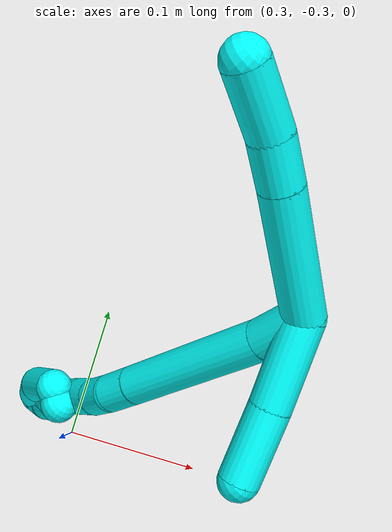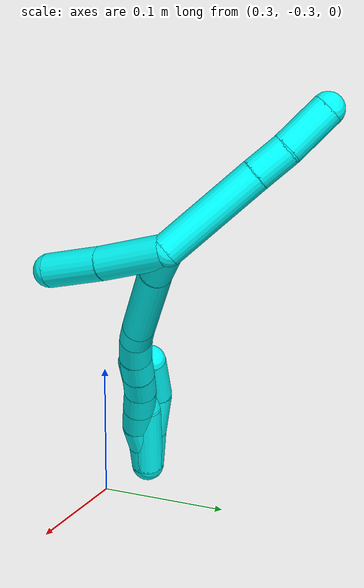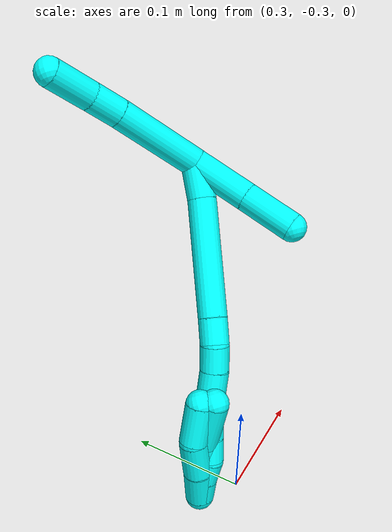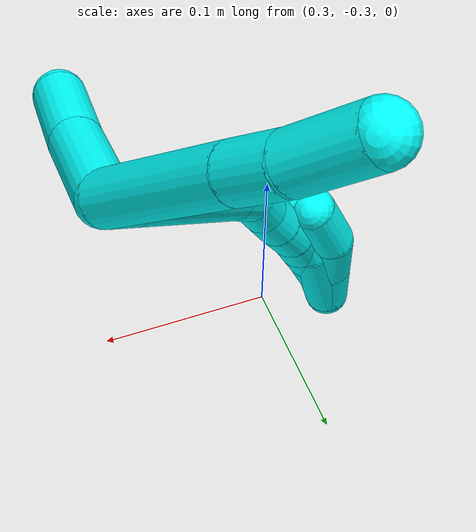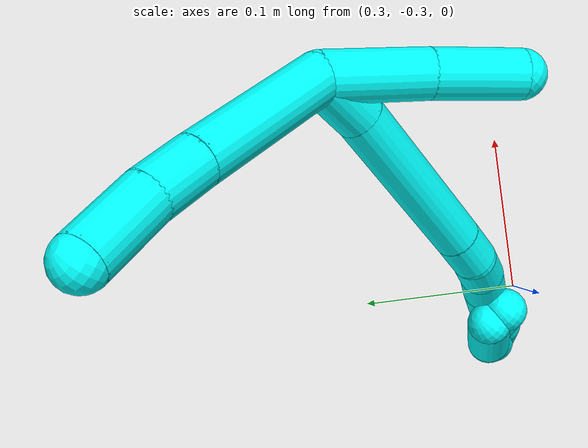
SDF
<sdf version="1.7">
 <world name="default">
  <model name="3">
   <static>0</static>
   <link name="3">
    <collision name="collision-cylinder-e_1_2_8">
     <pose>-0.028236 0.018258 -0.023532 -2.48173 -0.758704 1.72221</pose>
     <geometry><cylinder><radius>0.0125</radius><length>0.082083</length></cylinder></geometry>
     <surface>
      <friction><ode><mu>1.16</mu><mu2>1.16</mu2><slip1>0</slip1><slip2>0</slip2></ode></friction>
      <contact><ode><kp>1e+06</kp><kd>1</kd><max_vel>0</max_vel><min_depth>0.001</min_depth></ode></contact>
     </surface>
    </collision>
    <visual name="visual-cylinder-e_1_2_8">
     <pose>-0.028236 0.018258 -0.023532 -2.48173 -0.758704 1.72221</pose>
     <geometry><cylinder><radius>0.0125</radius><length>0.082083</length></cylinder></geometry>
     <material><ambient>0.003922 1 0.996078 1</ambient></material>
    </visual>
    <collision name="collision-cylinder-e_2_8_9">
     <pose>-0.06642 0.042738 -0.054688 -2.45709 -0.79095 1.72865</pose>
     <geometry><cylinder><radius>0.0125</radius><length>0.027986</length></cylinder></geometry>
     <surface>
      <friction><ode><mu>1.16</mu><mu2>1.16</mu2><slip1>0</slip1><slip2>0</slip2></ode></friction>
      <contact><ode><kp>1e+06</kp><kd>1</kd><max_vel>0</max_vel><min_depth>0.001</min_depth></ode></contact>
     </surface>
    </collision>
    <visual name="visual-cylinder-e_2_8_9">
     <pose>-0.06642 0.042738 -0.054688 -2.45709 -0.79095 1.72865</pose>
     <geometry><cylinder><radius>0.0125</radius><length>0.027986</length></cylinder></geometry>
     <material><ambient>0.003922 1 0.996078 1</ambient></material>
    </visual>
    <collision name="collision-cylinder-e_3_9_6">
     <pose>-0.090193 0.059903 -0.07168 -2.27885 -0.764727 1.4362</pose>
     <geometry><cylinder><radius>0.0125</radius><length>0.039932</length></cylinder></geometry>
     <surface>
      <friction><ode><mu>1.16</mu><mu2>1.16</mu2><slip1>0</slip1><slip2>0</slip2></ode></friction>
      <contact><ode><kp>1e+06</kp><kd>1</kd><max_vel>0</max_vel><min_depth>0.001</min_depth></ode></contact>
     </surface>
    </collision>
    <visual name="visual-cylinder-e_3_9_6">
     <pose>-0.090193 0.059903 -0.07168 -2.27885 -0.764727 1.4362</pose>
     <geometry><cylinder><radius>0.0125</radius><length>0.039932</length></cylinder></geometry>
     <material><ambient>0.003922 1 0.996078 1</ambient></material>
    </visual>
    <collision name="collision-cylinder-e_1_2_10">
     <pose>0.016113 0.004681 0.020933 -0.220008 0.644282 -0.073696</pose>
     <geometry><cylinder><radius>0.0125</radius><length>0.053656</length></cylinder></geometry>
     <surface>
      <friction><ode><mu>1.16</mu><mu2>1.16</mu2><slip1>0</slip1><slip2>0</slip2></ode></friction>
      <contact><ode><kp>1e+06</kp><kd>1</kd><max_vel>0</max_vel><min_depth>0.001</min_depth></ode></contact>
     </surface>
    </collision>
    <visual name="visual-cylinder-e_1_2_10">
     <pose>0.016113 0.004681 0.020933 -0.220008 0.644282 -0.073696</pose>
     <geometry><cylinder><radius>0.0125</radius><length>0.053656</length></cylinder></geometry>
     <material><ambient>0.003922 1 0.996078 1</ambient></material>
    </visual>
    <collision name="collision-cylinder-e_2_10_5">
     <pose>0.04564 0.014624 0.060013 -0.282213 0.617318 -0.090524</pose>
     <geometry><cylinder><radius>0.0125</radius><length>0.046344</length></cylinder></geometry>
     <surface>
      <friction><ode><mu>1.16</mu><mu2>1.16</mu2><slip1>0</slip1><slip2>0</slip2></ode></friction>
      <contact><ode><kp>1e+06</kp><kd>1</kd><max_vel>0</max_vel><min_depth>0.001</min_depth></ode></contact>
     </surface>
    </collision>
    <visual name="visual-cylinder-e_2_10_5">
     <pose>0.04564 0.014624 0.060013 -0.282213 0.617318 -0.090524</pose>
     <geometry><cylinder><radius>0.0125</radius><length>0.046344</length></cylinder></geometry>
     <material><ambient>0.003922 1 0.996078 1</ambient></material>
    </visual>
    <collision name="collision-cylinder-e_1_2_11">
     <pose>-0.001507 -0.001035 0.016079 0.064309 -0.093279 -0.003003</pose>
     <geometry><cylinder><radius>0.0125</radius><length>0.032365</length></cylinder></geometry>
     <surface>
      <friction><ode><mu>1.16</mu><mu2>1.16</mu2><slip1>0</slip1><slip2>0</slip2></ode></friction>
      <contact><ode><kp>1e+06</kp><kd>1</kd><max_vel>0</max_vel><min_depth>0.001</min_depth></ode></contact>
     </surface>
    </collision>
    <visual name="visual-cylinder-e_1_2_11">
     <pose>-0.001507 -0.001035 0.016079 0.064309 -0.093279 -0.003003</pose>
     <geometry><cylinder><radius>0.0125</radius><length>0.032365</length></cylinder></geometry>
     <material><ambient>0.003922 1 0.996078 1</ambient></material>
    </visual>
    <collision name="collision-cylinder-e_2_11_12">
     <pose>-0.013027 -0.002832 0.081973 0.015274 -0.198324 -0.00152</pose>
     <geometry><cylinder><radius>0.0125</radius><length>0.101636</length></cylinder></geometry>
     <surface>
      <friction><ode><mu>1.16</mu><mu2>1.16</mu2><slip1>0</slip1><slip2>0</slip2></ode></friction>
      <contact><ode><kp>1e+06</kp><kd>1</kd><max_vel>0</max_vel><min_depth>0.001</min_depth></ode></contact>
     </surface>
    </collision>
    <visual name="visual-cylinder-e_2_11_12">
     <pose>-0.013027 -0.002832 0.081973 0.015274 -0.198324 -0.00152</pose>
     <geometry><cylinder><radius>0.0125</radius><length>0.101636</length></cylinder></geometry>
     <material><ambient>0.003922 1 0.996078 1</ambient></material>
    </visual>
    <collision name="collision-cylinder-e_3_12_13">
     <pose>-0.025359 -0.004298 0.142858 0.063608 -0.206125 -0.006581</pose>
     <geometry><cylinder><radius>0.0125</radius><length>0.022662</length></cylinder></geometry>
     <surface>
      <friction><ode><mu>1.16</mu><mu2>1.16</mu2><slip1>0</slip1><slip2>0</slip2></ode></friction>
      <contact><ode><kp>1e+06</kp><kd>1</kd><max_vel>0</max_vel><min_depth>0.001</min_depth></ode></contact>
     </surface>
    </collision>
    <visual name="visual-cylinder-e_3_12_13">
     <pose>-0.025359 -0.004298 0.142858 0.063608 -0.206125 -0.006581</pose>
     <geometry><cylinder><radius>0.0125</radius><length>0.022662</length></cylinder></geometry>
     <material><ambient>0.003922 1 0.996078 1</ambient></material>
    </visual>
    <collision name="collision-cylinder-e_4_13_14">
     <pose>-0.030198 -0.008802 0.164017 0.360077 -0.229607 -0.041969</pose>
     <geometry><cylinder><radius>0.0125</radius><length>0.022144</length></cylinder></geometry>
     <surface>
      <friction><ode><mu>1.16</mu><mu2>1.16</mu2><slip1>0</slip1><slip2>0</slip2></ode></friction>
      <contact><ode><kp>1e+06</kp><kd>1</kd><max_vel>0</max_vel><min_depth>0.001</min_depth></ode></contact>
     </surface>
    </collision>
    <visual name="visual-cylinder-e_4_13_14">
     <pose>-0.030198 -0.008802 0.164017 0.360077 -0.229607 -0.041969</pose>
     <geometry><cylinder><radius>0.0125</radius><length>0.022144</length></cylinder></geometry>
     <material><ambient>0.003922 1 0.996078 1</ambient></material>
    </visual>
    <collision name="collision-cylinder-e_5_14_15">
     <pose>-0.036236 -0.016234 0.182922 0.390937 -0.353519 -0.070704</pose>
     <geometry><cylinder><radius>0.0125</radius><length>0.020326</length></cylinder></geometry>
     <surface>
      <friction><ode><mu>1.16</mu><mu2>1.16</mu2><slip1>0</slip1><slip2>0</slip2></ode></friction>
      <contact><ode><kp>1e+06</kp><kd>1</kd><max_vel>0</max_vel><min_depth>0.001</min_depth></ode></contact>
     </surface>
    </collision>
    <visual name="visual-cylinder-e_5_14_15">
     <pose>-0.036236 -0.016234 0.182922 0.390937 -0.353519 -0.070704</pose>
     <geometry><cylinder><radius>0.0125</radius><length>0.020326</length></cylinder></geometry>
     <material><ambient>0.003922 1 0.996078 1</ambient></material>
    </visual>
    <collision name="collision-cylinder-e_6_15_16">
     <pose>-0.04311 -0.023158 0.200924 0.34407 -0.331226 -0.058067</pose>
     <geometry><cylinder><radius>0.0125</radius><length>0.020638</length></cylinder></geometry>
     <surface>
      <friction><ode><mu>1.16</mu><mu2>1.16</mu2><slip1>0</slip1><slip2>0</slip2></ode></friction>
      <contact><ode><kp>1e+06</kp><kd>1</kd><max_vel>0</max_vel><min_depth>0.001</min_depth></ode></contact>
     </surface>
    </collision>
    <visual name="visual-cylinder-e_6_15_16">
     <pose>-0.04311 -0.023158 0.200924 0.34407 -0.331226 -0.058067</pose>
     <geometry><cylinder><radius>0.0125</radius><length>0.020638</length></cylinder></geometry>
     <material><ambient>0.003922 1 0.996078 1</ambient></material>
    </visual>
    <collision name="collision-cylinder-e_7_16_17">
     <pose>-0.048394 -0.030271 0.21926 0.395553 -0.192025 -0.038595</pose>
     <geometry><cylinder><radius>0.0125</radius><length>0.020203</length></cylinder></geometry>
     <surface>
      <friction><ode><mu>1.16</mu><mu2>1.16</mu2><slip1>0</slip1><slip2>0</slip2></ode></friction>
      <contact><ode><kp>1e+06</kp><kd>1</kd><max_vel>0</max_vel><min_depth>0.001</min_depth></ode></contact>
     </surface>
    </collision>
    <visual name="visual-cylinder-e_7_16_17">
     <pose>-0.048394 -0.030271 0.21926 0.395553 -0.192025 -0.038595</pose>
     <geometry><cylinder><radius>0.0125</radius><length>0.020203</length></cylinder></geometry>
     <material><ambient>0.003922 1 0.996078 1</ambient></material>
    </visual>
    <collision name="collision-cylinder-e_8_17_18">
     <pose>-0.052375 -0.0379 0.237435 0.399378 -0.206586 -0.041953</pose>
     <geometry><cylinder><radius>0.0125</radius><length>0.020017</length></cylinder></geometry>
     <surface>
      <friction><ode><mu>1.16</mu><mu2>1.16</mu2><slip1>0</slip1><slip2>0</slip2></ode></friction>
      <contact><ode><kp>1e+06</kp><kd>1</kd><max_vel>0</max_vel><min_depth>0.001</min_depth></ode></contact>
     </surface>
    </collision>
    <visual name="visual-cylinder-e_8_17_18">
     <pose>-0.052375 -0.0379 0.237435 0.399378 -0.206586 -0.041953</pose>
     <geometry><cylinder><radius>0.0125</radius><length>0.020017</length></cylinder></geometry>
     <material><ambient>0.003922 1 0.996078 1</ambient></material>
    </visual>
    <collision name="collision-cylinder-e_9_18_19">
     <pose>-0.058751 -0.046934 0.253814 0.617631 -0.446893 -0.144737</pose>
     <geometry><cylinder><radius>0.0125</radius><length>0.020007</length></cylinder></geometry>
     <surface>
      <friction><ode><mu>1.16</mu><mu2>1.16</mu2><slip1>0</slip1><slip2>0</slip2></ode></friction>
      <contact><ode><kp>1e+06</kp><kd>1</kd><max_vel>0</max_vel><min_depth>0.001</min_depth></ode></contact>
     </surface>
    </collision>
    <visual name="visual-cylinder-e_9_18_19">
     <pose>-0.058751 -0.046934 0.253814 0.617631 -0.446893 -0.144737</pose>
     <geometry><cylinder><radius>0.0125</radius><length>0.020007</length></cylinder></geometry>
     <material><ambient>0.003922 1 0.996078 1</ambient></material>
    </visual>
    <collision name="collision-cylinder-e_10_19_1">
     <pose>-0.06586 -0.058298 0.268555 0.693515 -0.282284 -0.102598</pose>
     <geometry><cylinder><radius>0.0125</radius><length>0.020002</length></cylinder></geometry>
     <surface>
      <friction><ode><mu>1.16</mu><mu2>1.16</mu2><slip1>0</slip1><slip2>0</slip2></ode></friction>
      <contact><ode><kp>1e+06</kp><kd>1</kd><max_vel>0</max_vel><min_depth>0.001</min_depth></ode></contact>
     </surface>
    </collision>
    <visual name="visual-cylinder-e_10_19_1">
     <pose>-0.06586 -0.058298 0.268555 0.693515 -0.282284 -0.102598</pose>
     <geometry><cylinder><radius>0.0125</radius><length>0.020002</length></cylinder></geometry>
     <material><ambient>0.003922 1 0.996078 1</ambient></material>
    </visual>
    <collision name="collision-cylinder-e_1_1_20">
     <pose>-0.062699 -0.048703 0.253508 -2.52993 0.213696 -0.654943</pose>
     <geometry><cylinder><radius>0.0125</radius><length>0.056079</length></cylinder></geometry>
     <surface>
      <friction><ode><mu>1.16</mu><mu2>1.16</mu2><slip1>0</slip1><slip2>0</slip2></ode></friction>
      <contact><ode><kp>1e+06</kp><kd>1</kd><max_vel>0</max_vel><min_depth>0.001</min_depth></ode></contact>
     </surface>
    </collision>
    <visual name="visual-cylinder-e_1_1_20">
     <pose>-0.062699 -0.048703 0.253508 -2.52993 0.213696 -0.654943</pose>
     <geometry><cylinder><radius>0.0125</radius><length>0.056079</length></cylinder></geometry>
     <material><ambient>0.003922 1 0.996078 1</ambient></material>
    </visual>
    <collision name="collision-cylinder-e_2_20_4">
     <pose>-0.049182 -0.019169 0.215761 -2.40815 0.351983 -0.867208</pose>
     <geometry><cylinder><radius>0.0125</radius><length>0.043921</length></cylinder></geometry>
     <surface>
      <friction><ode><mu>1.16</mu><mu2>1.16</mu2><slip1>0</slip1><slip2>0</slip2></ode></friction>
      <contact><ode><kp>1e+06</kp><kd>1</kd><max_vel>0</max_vel><min_depth>0.001</min_depth></ode></contact>
     </surface>
    </collision>
    <visual name="visual-cylinder-e_2_20_4">
     <pose>-0.049182 -0.019169 0.215761 -2.40815 0.351983 -0.867208</pose>
     <geometry><cylinder><radius>0.0125</radius><length>0.043921</length></cylinder></geometry>
     <material><ambient>0.003922 1 0.996078 1</ambient></material>
    </visual>
    <collision name="collision-cylinder-e_1_1_21">
     <pose>-0.067676 -0.054118 0.264819 -2.39362 0.063821 -0.162318</pose>
     <geometry><cylinder><radius>0.0125</radius><length>0.030408</length></cylinder></geometry>
     <surface>
      <friction><ode><mu>1.16</mu><mu2>1.16</mu2><slip1>0</slip1><slip2>0</slip2></ode></friction>
      <contact><ode><kp>1e+06</kp><kd>1</kd><max_vel>0</max_vel><min_depth>0.001</min_depth></ode></contact>
     </surface>
    </collision>
    <visual name="visual-cylinder-e_1_1_21">
     <pose>-0.067676 -0.054118 0.264819 -2.39362 0.063821 -0.162318</pose>
     <geometry><cylinder><radius>0.0125</radius><length>0.030408</length></cylinder></geometry>
     <material><ambient>0.003922 1 0.996078 1</ambient></material>
    </visual>
    <collision name="collision-cylinder-e_2_21_22">
     <pose>-0.066114 -0.033616 0.240318 -2.49104 0.035192 -0.104263</pose>
     <geometry><cylinder><radius>0.0125</radius><length>0.033644</length></cylinder></geometry>
     <surface>
      <friction><ode><mu>1.16</mu><mu2>1.16</mu2><slip1>0</slip1><slip2>0</slip2></ode></friction>
      <contact><ode><kp>1e+06</kp><kd>1</kd><max_vel>0</max_vel><min_depth>0.001</min_depth></ode></contact>
     </surface>
    </collision>
    <visual name="visual-cylinder-e_2_21_22">
     <pose>-0.066114 -0.033616 0.240318 -2.49104 0.035192 -0.104263</pose>
     <geometry><cylinder><radius>0.0125</radius><length>0.033644</length></cylinder></geometry>
     <material><ambient>0.003922 1 0.996078 1</ambient></material>
    </visual>
    <collision name="collision-cylinder-e_3_22_3">
     <pose>-0.059451 -0.014901 0.212333 -2.61285 0.344593 -1.14265</pose>
     <geometry><cylinder><radius>0.0125</radius><length>0.035948</length></cylinder></geometry>
     <surface>
      <friction><ode><mu>1.16</mu><mu2>1.16</mu2><slip1>0</slip1><slip2>0</slip2></ode></friction>
      <contact><ode><kp>1e+06</kp><kd>1</kd><max_vel>0</max_vel><min_depth>0.001</min_depth></ode></contact>
     </surface>
    </collision>
    <visual name="visual-cylinder-e_3_22_3">
     <pose>-0.059451 -0.014901 0.212333 -2.61285 0.344593 -1.14265</pose>
     <geometry><cylinder><radius>0.0125</radius><length>0.035948</length></cylinder></geometry>
     <material><ambient>0.003922 1 0.996078 1</ambient></material>
    </visual>
    <collision name="collision-sphere-3">
     <pose>-0.053379 -0.006367 0.197726 0 -0 0</pose>
     <geometry><sphere><radius>0.0125</radius></sphere></geometry>
     <surface>
      <friction><ode><mu>1.16</mu><mu2>1.16</mu2><slip1>0</slip1><slip2>0</slip2></ode></friction>
      <contact><ode><kp>1e+06</kp><kd>1</kd><max_vel>0</max_vel><min_depth>0.001</min_depth></ode></contact>
     </surface>
    </collision>
    <visual name="visual-sphere-3">
     <pose>-0.053379 -0.006367 0.197726 0 -0 0</pose>
     <geometry><sphere><radius>0.0125</radius></sphere></geometry>
     <material><ambient>0.003922 1 0.996078 1</ambient></material>
    </visual>
    <collision name="collision-sphere-22">
     <pose>-0.065522 -0.023435 0.226941 0 -0 0</pose>
     <geometry><sphere><radius>0.0125</radius></sphere></geometry>
     <surface>
      <friction><ode><mu>1.16</mu><mu2>1.16</mu2><slip1>0</slip1><slip2>0</slip2></ode></friction>
      <contact><ode><kp>1e+06</kp><kd>1</kd><max_vel>0</max_vel><min_depth>0.001</min_depth></ode></contact>
     </surface>
    </collision>
    <visual name="visual-sphere-22">
     <pose>-0.065522 -0.023435 0.226941 0 -0 0</pose>
     <geometry><sphere><radius>0.0125</radius></sphere></geometry>
     <material><ambient>0.003922 1 0.996078 1</ambient></material>
    </visual>
    <collision name="collision-sphere-21">
     <pose>-0.066706 -0.043798 0.253696 0 -0 0</pose>
     <geometry><sphere><radius>0.0125</radius></sphere></geometry>
     <surface>
      <friction><ode><mu>1.16</mu><mu2>1.16</mu2><slip1>0</slip1><slip2>0</slip2></ode></friction>
      <contact><ode><kp>1e+06</kp><kd>1</kd><max_vel>0</max_vel><min_depth>0.001</min_depth></ode></contact>
     </surface>
    </collision>
    <visual name="visual-sphere-21">
     <pose>-0.066706 -0.043798 0.253696 0 -0 0</pose>
     <geometry><sphere><radius>0.0125</radius></sphere></geometry>
     <material><ambient>0.003922 1 0.996078 1</ambient></material>
    </visual>
    <collision name="collision-sphere-4">
     <pose>-0.04161 -0.005369 0.200447 0 -0 0</pose>
     <geometry><sphere><radius>0.0125</radius></sphere></geometry>
     <surface>
      <friction><ode><mu>1.16</mu><mu2>1.16</mu2><slip1>0</slip1><slip2>0</slip2></ode></friction>
      <contact><ode><kp>1e+06</kp><kd>1</kd><max_vel>0</max_vel><min_depth>0.001</min_depth></ode></contact>
     </surface>
    </collision>
    <visual name="visual-sphere-4">
     <pose>-0.04161 -0.005369 0.200447 0 -0 0</pose>
     <geometry><sphere><radius>0.0125</radius></sphere></geometry>
     <material><ambient>0.003922 1 0.996078 1</ambient></material>
    </visual>
    <collision name="collision-sphere-20">
     <pose>-0.056753 -0.032969 0.231075 0 -0 0</pose>
     <geometry><sphere><radius>0.0125</radius></sphere></geometry>
     <surface>
      <friction><ode><mu>1.16</mu><mu2>1.16</mu2><slip1>0</slip1><slip2>0</slip2></ode></friction>
      <contact><ode><kp>1e+06</kp><kd>1</kd><max_vel>0</max_vel><min_depth>0.001</min_depth></ode></contact>
     </surface>
    </collision>
    <visual name="visual-sphere-20">
     <pose>-0.056753 -0.032969 0.231075 0 -0 0</pose>
     <geometry><sphere><radius>0.0125</radius></sphere></geometry>
     <material><ambient>0.003922 1 0.996078 1</ambient></material>
    </visual>
    <collision name="collision-sphere-5">
     <pose>0.059053 0.019886 0.078161 0 -0 0</pose>
     <geometry><sphere><radius>0.0125</radius></sphere></geometry>
     <surface>
      <friction><ode><mu>1.16</mu><mu2>1.16</mu2><slip1>0</slip1><slip2>0</slip2></ode></friction>
      <contact><ode><kp>1e+06</kp><kd>1</kd><max_vel>0</max_vel><min_depth>0.001</min_depth></ode></contact>
     </surface>
    </collision>
    <visual name="visual-sphere-5">
     <pose>0.059053 0.019886 0.078161 0 -0 0</pose>
     <geometry><sphere><radius>0.0125</radius></sphere></geometry>
     <material><ambient>0.003922 1 0.996078 1</ambient></material>
    </visual>
    <collision name="collision-sphere-10">
     <pose>0.032227 0.009362 0.041865 0 -0 0</pose>
     <geometry><sphere><radius>0.0125</radius></sphere></geometry>
     <surface>
      <friction><ode><mu>1.16</mu><mu2>1.16</mu2><slip1>0</slip1><slip2>0</slip2></ode></friction>
      <contact><ode><kp>1e+06</kp><kd>1</kd><max_vel>0</max_vel><min_depth>0.001</min_depth></ode></contact>
     </surface>
    </collision>
    <visual name="visual-sphere-10">
     <pose>0.032227 0.009362 0.041865 0 -0 0</pose>
     <geometry><sphere><radius>0.0125</radius></sphere></geometry>
     <material><ambient>0.003922 1 0.996078 1</ambient></material>
    </visual>
    <collision name="collision-sphere-6">
     <pose>-0.104016 0.070847 -0.081049 0 -0 0</pose>
     <geometry><sphere><radius>0.0125</radius></sphere></geometry>
     <surface>
      <friction><ode><mu>1.16</mu><mu2>1.16</mu2><slip1>0</slip1><slip2>0</slip2></ode></friction>
      <contact><ode><kp>1e+06</kp><kd>1</kd><max_vel>0</max_vel><min_depth>0.001</min_depth></ode></contact>
     </surface>
    </collision>
    <visual name="visual-sphere-6">
     <pose>-0.104016 0.070847 -0.081049 0 -0 0</pose>
     <geometry><sphere><radius>0.0125</radius></sphere></geometry>
     <material><ambient>0.003922 1 0.996078 1</ambient></material>
    </visual>
    <collision name="collision-sphere-9">
     <pose>-0.07637 0.048959 -0.06231 0 -0 0</pose>
     <geometry><sphere><radius>0.0125</radius></sphere></geometry>
     <surface>
      <friction><ode><mu>1.16</mu><mu2>1.16</mu2><slip1>0</slip1><slip2>0</slip2></ode></friction>
      <contact><ode><kp>1e+06</kp><kd>1</kd><max_vel>0</max_vel><min_depth>0.001</min_depth></ode></contact>
     </surface>
    </collision>
    <visual name="visual-sphere-9">
     <pose>-0.07637 0.048959 -0.06231 0 -0 0</pose>
     <geometry><sphere><radius>0.0125</radius></sphere></geometry>
     <material><ambient>0.003922 1 0.996078 1</ambient></material>
    </visual>
    <collision name="collision-sphere-2">
     <geometry><sphere><radius>0.0125</radius></sphere></geometry>
     <surface>
      <friction><ode><mu>1.16</mu><mu2>1.16</mu2><slip1>0</slip1><slip2>0</slip2></ode></friction>
      <contact><ode><kp>1e+06</kp><kd>1</kd><max_vel>0</max_vel><min_depth>0.001</min_depth></ode></contact>
     </surface>
    </collision>
    <visual name="visual-sphere-2">
     <geometry><sphere><radius>0.0125</radius></sphere></geometry>
     <material><ambient>0.003922 1 0.996078 1</ambient></material>
    </visual>
    <collision name="collision-sphere-19">
     <pose>-0.063074 -0.052158 0.261169 0 -0 0</pose>
     <geometry><sphere><radius>0.0125</radius></sphere></geometry>
     <surface>
      <friction><ode><mu>1.16</mu><mu2>1.16</mu2><slip1>0</slip1><slip2>0</slip2></ode></friction>
      <contact><ode><kp>1e+06</kp><kd>1</kd><max_vel>0</max_vel><min_depth>0.001</min_depth></ode></contact>
     </surface>
    </collision>
    <visual name="visual-sphere-19">
     <pose>-0.063074 -0.052158 0.261169 0 -0 0</pose>
     <geometry><sphere><radius>0.0125</radius></sphere></geometry>
     <material><ambient>0.003922 1 0.996078 1</ambient></material>
    </visual>
    <collision name="collision-sphere-8">
     <pose>-0.056471 0.036517 -0.047065 0 -0 0</pose>
     <geometry><sphere><radius>0.0125</radius></sphere></geometry>
     <surface>
      <friction><ode><mu>1.16</mu><mu2>1.16</mu2><slip1>0</slip1><slip2>0</slip2></ode></friction>
      <contact><ode><kp>1e+06</kp><kd>1</kd><max_vel>0</max_vel><min_depth>0.001</min_depth></ode></contact>
     </surface>
    </collision>
    <visual name="visual-sphere-8">
     <pose>-0.056471 0.036517 -0.047065 0 -0 0</pose>
     <geometry><sphere><radius>0.0125</radius></sphere></geometry>
     <material><ambient>0.003922 1 0.996078 1</ambient></material>
    </visual>
    <collision name="collision-sphere-11">
     <pose>-0.003015 -0.002071 0.032157 0 -0 0</pose>
     <geometry><sphere><radius>0.0125</radius></sphere></geometry>
     <surface>
      <friction><ode><mu>1.16</mu><mu2>1.16</mu2><slip1>0</slip1><slip2>0</slip2></ode></friction>
      <contact><ode><kp>1e+06</kp><kd>1</kd><max_vel>0</max_vel><min_depth>0.001</min_depth></ode></contact>
     </surface>
    </collision>
    <visual name="visual-sphere-11">
     <pose>-0.003015 -0.002071 0.032157 0 -0 0</pose>
     <geometry><sphere><radius>0.0125</radius></sphere></geometry>
     <material><ambient>0.003922 1 0.996078 1</ambient></material>
    </visual>
    <collision name="collision-sphere-12">
     <pose>-0.02304 -0.003593 0.13179 0 -0 0</pose>
     <geometry><sphere><radius>0.0125</radius></sphere></geometry>
     <surface>
      <friction><ode><mu>1.16</mu><mu2>1.16</mu2><slip1>0</slip1><slip2>0</slip2></ode></friction>
      <contact><ode><kp>1e+06</kp><kd>1</kd><max_vel>0</max_vel><min_depth>0.001</min_depth></ode></contact>
     </surface>
    </collision>
    <visual name="visual-sphere-12">
     <pose>-0.02304 -0.003593 0.13179 0 -0 0</pose>
     <geometry><sphere><radius>0.0125</radius></sphere></geometry>
     <material><ambient>0.003922 1 0.996078 1</ambient></material>
    </visual>
    <collision name="collision-sphere-13">
     <pose>-0.027678 -0.005003 0.153927 0 -0 0</pose>
     <geometry><sphere><radius>0.0125</radius></sphere></geometry>
     <surface>
      <friction><ode><mu>1.16</mu><mu2>1.16</mu2><slip1>0</slip1><slip2>0</slip2></ode></friction>
      <contact><ode><kp>1e+06</kp><kd>1</kd><max_vel>0</max_vel><min_depth>0.001</min_depth></ode></contact>
     </surface>
    </collision>
    <visual name="visual-sphere-13">
     <pose>-0.027678 -0.005003 0.153927 0 -0 0</pose>
     <geometry><sphere><radius>0.0125</radius></sphere></geometry>
     <material><ambient>0.003922 1 0.996078 1</ambient></material>
    </visual>
    <collision name="collision-sphere-14">
     <pose>-0.032718 -0.0126 0.174107 0 -0 0</pose>
     <geometry><sphere><radius>0.0125</radius></sphere></geometry>
     <surface>
      <friction><ode><mu>1.16</mu><mu2>1.16</mu2><slip1>0</slip1><slip2>0</slip2></ode></friction>
      <contact><ode><kp>1e+06</kp><kd>1</kd><max_vel>0</max_vel><min_depth>0.001</min_depth></ode></contact>
     </surface>
    </collision>
    <visual name="visual-sphere-14">
     <pose>-0.032718 -0.0126 0.174107 0 -0 0</pose>
     <geometry><sphere><radius>0.0125</radius></sphere></geometry>
     <material><ambient>0.003922 1 0.996078 1</ambient></material>
    </visual>
    <collision name="collision-sphere-15">
     <pose>-0.039755 -0.019867 0.191738 0 -0 0</pose>
     <geometry><sphere><radius>0.0125</radius></sphere></geometry>
     <surface>
      <friction><ode><mu>1.16</mu><mu2>1.16</mu2><slip1>0</slip1><slip2>0</slip2></ode></friction>
      <contact><ode><kp>1e+06</kp><kd>1</kd><max_vel>0</max_vel><min_depth>0.001</min_depth></ode></contact>
     </surface>
    </collision>
    <visual name="visual-sphere-15">
     <pose>-0.039755 -0.019867 0.191738 0 -0 0</pose>
     <geometry><sphere><radius>0.0125</radius></sphere></geometry>
     <material><ambient>0.003922 1 0.996078 1</ambient></material>
    </visual>
    <collision name="collision-sphere-16">
     <pose>-0.046466 -0.02645 0.21011 0 -0 0</pose>
     <geometry><sphere><radius>0.0125</radius></sphere></geometry>
     <surface>
      <friction><ode><mu>1.16</mu><mu2>1.16</mu2><slip1>0</slip1><slip2>0</slip2></ode></friction>
      <contact><ode><kp>1e+06</kp><kd>1</kd><max_vel>0</max_vel><min_depth>0.001</min_depth></ode></contact>
     </surface>
    </collision>
    <visual name="visual-sphere-16">
     <pose>-0.046466 -0.02645 0.21011 0 -0 0</pose>
     <geometry><sphere><radius>0.0125</radius></sphere></geometry>
     <material><ambient>0.003922 1 0.996078 1</ambient></material>
    </visual>
    <collision name="collision-sphere-17">
     <pose>-0.050322 -0.034091 0.22841 0 -0 0</pose>
     <geometry><sphere><radius>0.0125</radius></sphere></geometry>
     <surface>
      <friction><ode><mu>1.16</mu><mu2>1.16</mu2><slip1>0</slip1><slip2>0</slip2></ode></friction>
      <contact><ode><kp>1e+06</kp><kd>1</kd><max_vel>0</max_vel><min_depth>0.001</min_depth></ode></contact>
     </surface>
    </collision>
    <visual name="visual-sphere-17">
     <pose>-0.050322 -0.034091 0.22841 0 -0 0</pose>
     <geometry><sphere><radius>0.0125</radius></sphere></geometry>
     <material><ambient>0.003922 1 0.996078 1</ambient></material>
    </visual>
    <collision name="collision-sphere-18">
     <pose>-0.054428 -0.041709 0.24646 0 -0 0</pose>
     <geometry><sphere><radius>0.0125</radius></sphere></geometry>
     <surface>
      <friction><ode><mu>1.16</mu><mu2>1.16</mu2><slip1>0</slip1><slip2>0</slip2></ode></friction>
      <contact><ode><kp>1e+06</kp><kd>1</kd><max_vel>0</max_vel><min_depth>0.001</min_depth></ode></contact>
     </surface>
    </collision>
    <visual name="visual-sphere-18">
     <pose>-0.054428 -0.041709 0.24646 0 -0 0</pose>
     <geometry><sphere><radius>0.0125</radius></sphere></geometry>
     <material><ambient>0.003922 1 0.996078 1</ambient></material>
    </visual>
    <collision name="collision-sphere-1">
     <pose>-0.068646 -0.064438 0.275942 0 -0 0</pose>
     <geometry><sphere><radius>0.0125</radius></sphere></geometry>
     <surface>
      <friction><ode><mu>1.16</mu><mu2>1.16</mu2><slip1>0</slip1><slip2>0</slip2></ode></friction>
      <contact><ode><kp>1e+06</kp><kd>1</kd><max_vel>0</max_vel><min_depth>0.001</min_depth></ode></contact>
     </surface>
    </collision>
    <visual name="visual-sphere-1">
     <pose>-0.068646 -0.064438 0.275942 0 -0 0</pose>
     <geometry><sphere><radius>0.0125</radius></sphere></geometry>
     <material><ambient>0.003922 1 0.996078 1</ambient></material>
    </visual>
    <inertial>
     <pose>-0.034207 -0.007689 0.117683 0 -0 0</pose>
     <mass>0.75</mass>
     <inertia><ixx>0.000162</ixx><ixy>0</ixy><ixz>0</ixz><iyy>0.000172</iyy><iyz>0</iyz><izz>-0</izz></inertia>
    </inertial>
   </link>
   <pose>0.419679 -0.18922 0.242969 2.26083 -0.094874 -0.768888</pose>
  </model>
 </world>
</sdf>
